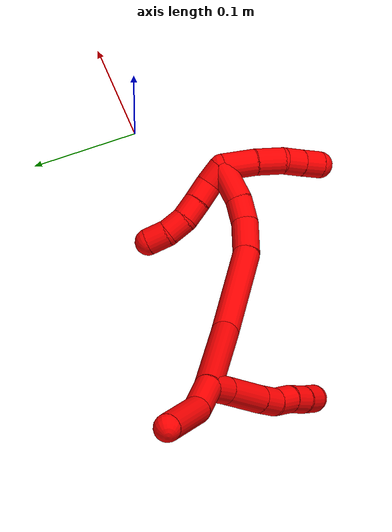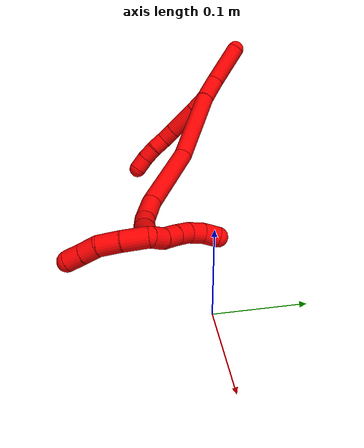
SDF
<sdf version="1.7">
 <world name="default">
  <model name="2">
   <static>0</static>
   <link name="2">
    <collision name="collision-cylinder-e_1_2_8">
     <pose>0.001656 -0.010536 -0.005905 2.08162 0.136253 0.231869</pose>
     <geometry><cylinder><radius>0.0125</radius><length>0.024382</length></cylinder></geometry>
     <surface>
      <friction><ode><mu>1.16</mu><mu2>1.16</mu2><slip1>0</slip1><slip2>0</slip2></ode></friction>
      <contact><ode><kp>1e+06</kp><kd>1</kd><max_vel>0</max_vel><min_depth>0.001</min_depth></ode></contact>
     </surface>
    </collision>
    <visual name="visual-cylinder-e_1_2_8">
     <pose>0.001656 -0.010536 -0.005905 2.08162 0.136253 0.231869</pose>
     <geometry><cylinder><radius>0.0125</radius><length>0.024382</length></cylinder></geometry>
     <material><ambient>1 0 0 1</ambient></material>
    </visual>
    <collision name="collision-cylinder-e_2_8_9">
     <pose>0.006624 -0.041015 -0.021019 2.0034 0.149649 0.233312</pose>
     <geometry><cylinder><radius>0.0125</radius><length>0.044429</length></cylinder></geometry>
     <surface>
      <friction><ode><mu>1.16</mu><mu2>1.16</mu2><slip1>0</slip1><slip2>0</slip2></ode></friction>
      <contact><ode><kp>1e+06</kp><kd>1</kd><max_vel>0</max_vel><min_depth>0.001</min_depth></ode></contact>
     </surface>
    </collision>
    <visual name="visual-cylinder-e_2_8_9">
     <pose>0.006624 -0.041015 -0.021019 2.0034 0.149649 0.233312</pose>
     <geometry><cylinder><radius>0.0125</radius><length>0.044429</length></cylinder></geometry>
     <material><ambient>1 0 0 1</ambient></material>
    </visual>
    <collision name="collision-cylinder-e_3_9_10">
     <pose>0.011765 -0.069975 -0.03479 2.03914 0.17907 0.289998</pose>
     <geometry><cylinder><radius>0.0125</radius><length>0.020541</length></cylinder></geometry>
     <surface>
      <friction><ode><mu>1.16</mu><mu2>1.16</mu2><slip1>0</slip1><slip2>0</slip2></ode></friction>
      <contact><ode><kp>1e+06</kp><kd>1</kd><max_vel>0</max_vel><min_depth>0.001</min_depth></ode></contact>
     </surface>
    </collision>
    <visual name="visual-cylinder-e_3_9_10">
     <pose>0.011765 -0.069975 -0.03479 2.03914 0.17907 0.289998</pose>
     <geometry><cylinder><radius>0.0125</radius><length>0.020541</length></cylinder></geometry>
     <material><ambient>1 0 0 1</ambient></material>
    </visual>
    <collision name="collision-cylinder-e_4_10_11">
     <pose>0.016655 -0.086394 -0.045673 2.27767 0.30469 0.642986</pose>
     <geometry><cylinder><radius>0.0125</radius><length>0.020405</length></cylinder></geometry>
     <surface>
      <friction><ode><mu>1.16</mu><mu2>1.16</mu2><slip1>0</slip1><slip2>0</slip2></ode></friction>
      <contact><ode><kp>1e+06</kp><kd>1</kd><max_vel>0</max_vel><min_depth>0.001</min_depth></ode></contact>
     </surface>
    </collision>
    <visual name="visual-cylinder-e_4_10_11">
     <pose>0.016655 -0.086394 -0.045673 2.27767 0.30469 0.642986</pose>
     <geometry><cylinder><radius>0.0125</radius><length>0.020405</length></cylinder></geometry>
     <material><ambient>1 0 0 1</ambient></material>
    </visual>
    <collision name="collision-cylinder-e_5_11_12">
     <pose>0.021351 -0.101961 -0.057605 2.17284 0.163513 0.308964</pose>
     <geometry><cylinder><radius>0.0125</radius><length>0.020086</length></cylinder></geometry>
     <surface>
      <friction><ode><mu>1.16</mu><mu2>1.16</mu2><slip1>0</slip1><slip2>0</slip2></ode></friction>
      <contact><ode><kp>1e+06</kp><kd>1</kd><max_vel>0</max_vel><min_depth>0.001</min_depth></ode></contact>
     </surface>
    </collision>
    <visual name="visual-cylinder-e_5_11_12">
     <pose>0.021351 -0.101961 -0.057605 2.17284 0.163513 0.308964</pose>
     <geometry><cylinder><radius>0.0125</radius><length>0.020086</length></cylinder></geometry>
     <material><ambient>1 0 0 1</ambient></material>
    </visual>
    <collision name="collision-cylinder-e_6_12_6">
     <pose>0.023873 -0.117551 -0.069977 2.3095 0.088183 0.199053</pose>
     <geometry><cylinder><radius>0.0125</radius><length>0.020158</length></cylinder></geometry>
     <surface>
      <friction><ode><mu>1.16</mu><mu2>1.16</mu2><slip1>0</slip1><slip2>0</slip2></ode></friction>
      <contact><ode><kp>1e+06</kp><kd>1</kd><max_vel>0</max_vel><min_depth>0.001</min_depth></ode></contact>
     </surface>
    </collision>
    <visual name="visual-cylinder-e_6_12_6">
     <pose>0.023873 -0.117551 -0.069977 2.3095 0.088183 0.199053</pose>
     <geometry><cylinder><radius>0.0125</radius><length>0.020158</length></cylinder></geometry>
     <material><ambient>1 0 0 1</ambient></material>
    </visual>
    <collision name="collision-cylinder-e_1_2_13">
     <pose>-0.003315 0.005353 0.017767 -0.292651 -0.176776 0.02612</pose>
     <geometry><cylinder><radius>0.0125</radius><length>0.037699</length></cylinder></geometry>
     <surface>
      <friction><ode><mu>1.16</mu><mu2>1.16</mu2><slip1>0</slip1><slip2>0</slip2></ode></friction>
      <contact><ode><kp>1e+06</kp><kd>1</kd><max_vel>0</max_vel><min_depth>0.001</min_depth></ode></contact>
     </surface>
    </collision>
    <visual name="visual-cylinder-e_1_2_13">
     <pose>-0.003315 0.005353 0.017767 -0.292651 -0.176776 0.02612</pose>
     <geometry><cylinder><radius>0.0125</radius><length>0.037699</length></cylinder></geometry>
     <material><ambient>1 0 0 1</ambient></material>
    </visual>
    <collision name="collision-cylinder-e_2_13_5">
     <pose>-0.009968 0.028404 0.06095 -0.608252 -0.107379 0.033732</pose>
     <geometry><cylinder><radius>0.0125</radius><length>0.062301</length></cylinder></geometry>
     <surface>
      <friction><ode><mu>1.16</mu><mu2>1.16</mu2><slip1>0</slip1><slip2>0</slip2></ode></friction>
      <contact><ode><kp>1e+06</kp><kd>1</kd><max_vel>0</max_vel><min_depth>0.001</min_depth></ode></contact>
     </surface>
    </collision>
    <visual name="visual-cylinder-e_2_13_5">
     <pose>-0.009968 0.028404 0.06095 -0.608252 -0.107379 0.033732</pose>
     <geometry><cylinder><radius>0.0125</radius><length>0.062301</length></cylinder></geometry>
     <material><ambient>1 0 0 1</ambient></material>
    </visual>
    <collision name="collision-cylinder-e_1_2_14">
     <pose>0.002264 -0.014178 -0.050123 2.86593 0.043429 0.310622</pose>
     <geometry><cylinder><radius>0.0125</radius><length>0.104277</length></cylinder></geometry>
     <surface>
      <friction><ode><mu>1.16</mu><mu2>1.16</mu2><slip1>0</slip1><slip2>0</slip2></ode></friction>
      <contact><ode><kp>1e+06</kp><kd>1</kd><max_vel>0</max_vel><min_depth>0.001</min_depth></ode></contact>
     </surface>
    </collision>
    <visual name="visual-cylinder-e_1_2_14">
     <pose>0.002264 -0.014178 -0.050123 2.86593 0.043429 0.310622</pose>
     <geometry><cylinder><radius>0.0125</radius><length>0.104277</length></cylinder></geometry>
     <material><ambient>1 0 0 1</ambient></material>
    </visual>
    <collision name="collision-cylinder-e_2_14_15">
     <pose>0.019382 -0.0313 -0.148574 3.08074 0.29769 2.74109</pose>
     <geometry><cylinder><radius>0.0125</radius><length>0.101292</length></cylinder></geometry>
     <surface>
      <friction><ode><mu>1.16</mu><mu2>1.16</mu2><slip1>0</slip1><slip2>0</slip2></ode></friction>
      <contact><ode><kp>1e+06</kp><kd>1</kd><max_vel>0</max_vel><min_depth>0.001</min_depth></ode></contact>
     </surface>
    </collision>
    <visual name="visual-cylinder-e_2_14_15">
     <pose>0.019382 -0.0313 -0.148574 3.08074 0.29769 2.74109</pose>
     <geometry><cylinder><radius>0.0125</radius><length>0.101292</length></cylinder></geometry>
     <material><ambient>1 0 0 1</ambient></material>
    </visual>
    <collision name="collision-cylinder-e_3_15_16">
     <pose>0.037902 -0.030808 -0.213832 -2.9413 0.209052 -1.61387</pose>
     <geometry><cylinder><radius>0.0125</radius><length>0.035317</length></cylinder></geometry>
     <surface>
      <friction><ode><mu>1.16</mu><mu2>1.16</mu2><slip1>0</slip1><slip2>0</slip2></ode></friction>
      <contact><ode><kp>1e+06</kp><kd>1</kd><max_vel>0</max_vel><min_depth>0.001</min_depth></ode></contact>
     </surface>
    </collision>
    <visual name="visual-cylinder-e_3_15_16">
     <pose>0.037902 -0.030808 -0.213832 -2.9413 0.209052 -1.61387</pose>
     <geometry><cylinder><radius>0.0125</radius><length>0.035317</length></cylinder></geometry>
     <material><ambient>1 0 0 1</ambient></material>
    </visual>
    <collision name="collision-cylinder-e_4_16_17">
     <pose>0.043785 -0.021513 -0.241056 -2.62428 0.185119 -0.674832</pose>
     <geometry><cylinder><radius>0.0125</radius><length>0.024102</length></cylinder></geometry>
     <surface>
      <friction><ode><mu>1.16</mu><mu2>1.16</mu2><slip1>0</slip1><slip2>0</slip2></ode></friction>
      <contact><ode><kp>1e+06</kp><kd>1</kd><max_vel>0</max_vel><min_depth>0.001</min_depth></ode></contact>
     </surface>
    </collision>
    <visual name="visual-cylinder-e_4_16_17">
     <pose>0.043785 -0.021513 -0.241056 -2.62428 0.185119 -0.674832</pose>
     <geometry><cylinder><radius>0.0125</radius><length>0.024102</length></cylinder></geometry>
     <material><ambient>1 0 0 1</ambient></material>
    </visual>
    <collision name="collision-cylinder-e_5_17_1">
     <pose>0.047222 -0.003456 -0.263846 -2.36817 0.069666 -0.170734</pose>
     <geometry><cylinder><radius>0.0125</radius><length>0.035012</length></cylinder></geometry>
     <surface>
      <friction><ode><mu>1.16</mu><mu2>1.16</mu2><slip1>0</slip1><slip2>0</slip2></ode></friction>
      <contact><ode><kp>1e+06</kp><kd>1</kd><max_vel>0</max_vel><min_depth>0.001</min_depth></ode></contact>
     </surface>
    </collision>
    <visual name="visual-cylinder-e_5_17_1">
     <pose>0.047222 -0.003456 -0.263846 -2.36817 0.069666 -0.170734</pose>
     <geometry><cylinder><radius>0.0125</radius><length>0.035012</length></cylinder></geometry>
     <material><ambient>1 0 0 1</ambient></material>
    </visual>
    <collision name="collision-cylinder-e_1_1_18">
     <pose>0.039256 0.007715 -0.272524 0.263376 -1.16421 -0.173918</pose>
     <geometry><cylinder><radius>0.0125</radius><length>0.02</length></cylinder></geometry>
     <surface>
      <friction><ode><mu>1.16</mu><mu2>1.16</mu2><slip1>0</slip1><slip2>0</slip2></ode></friction>
      <contact><ode><kp>1e+06</kp><kd>1</kd><max_vel>0</max_vel><min_depth>0.001</min_depth></ode></contact>
     </surface>
    </collision>
    <visual name="visual-cylinder-e_1_1_18">
     <pose>0.039256 0.007715 -0.272524 0.263376 -1.16421 -0.173918</pose>
     <geometry><cylinder><radius>0.0125</radius><length>0.02</length></cylinder></geometry>
     <material><ambient>1 0 0 1</ambient></material>
    </visual>
    <collision name="collision-cylinder-e_2_18_19">
     <pose>0.022334 0.006492 -0.262372 0.030421 -0.884586 -0.014408</pose>
     <geometry><cylinder><radius>0.0125</radius><length>0.02</length></cylinder></geometry>
     <surface>
      <friction><ode><mu>1.16</mu><mu2>1.16</mu2><slip1>0</slip1><slip2>0</slip2></ode></friction>
      <contact><ode><kp>1e+06</kp><kd>1</kd><max_vel>0</max_vel><min_depth>0.001</min_depth></ode></contact>
     </surface>
    </collision>
    <visual name="visual-cylinder-e_2_18_19">
     <pose>0.022334 0.006492 -0.262372 0.030421 -0.884586 -0.014408</pose>
     <geometry><cylinder><radius>0.0125</radius><length>0.02</length></cylinder></geometry>
     <material><ambient>1 0 0 1</ambient></material>
    </visual>
    <collision name="collision-cylinder-e_3_19_20">
     <pose>0.006485 0.006198 -0.250193 0.01728 -0.946285 -0.008846</pose>
     <geometry><cylinder><radius>0.0125</radius><length>0.02</length></cylinder></geometry>
     <surface>
      <friction><ode><mu>1.16</mu><mu2>1.16</mu2><slip1>0</slip1><slip2>0</slip2></ode></friction>
      <contact><ode><kp>1e+06</kp><kd>1</kd><max_vel>0</max_vel><min_depth>0.001</min_depth></ode></contact>
     </surface>
    </collision>
    <visual name="visual-cylinder-e_3_19_20">
     <pose>0.006485 0.006198 -0.250193 0.01728 -0.946285 -0.008846</pose>
     <geometry><cylinder><radius>0.0125</radius><length>0.02</length></cylinder></geometry>
     <material><ambient>1 0 0 1</ambient></material>
    </visual>
    <collision name="collision-cylinder-e_4_20_21">
     <pose>-0.010839 0.007639 -0.240774 -0.407218 -1.17112 0.272148</pose>
     <geometry><cylinder><radius>0.0125</radius><length>0.02</length></cylinder></geometry>
     <surface>
      <friction><ode><mu>1.16</mu><mu2>1.16</mu2><slip1>0</slip1><slip2>0</slip2></ode></friction>
      <contact><ode><kp>1e+06</kp><kd>1</kd><max_vel>0</max_vel><min_depth>0.001</min_depth></ode></contact>
     </surface>
    </collision>
    <visual name="visual-cylinder-e_4_20_21">
     <pose>-0.010839 0.007639 -0.240774 -0.407218 -1.17112 0.272148</pose>
     <geometry><cylinder><radius>0.0125</radius><length>0.02</length></cylinder></geometry>
     <material><ambient>1 0 0 1</ambient></material>
    </visual>
    <collision name="collision-cylinder-e_5_21_4">
     <pose>-0.029656 0.011866 -0.236482 -1.30951 -1.28899 1.04666</pose>
     <geometry><cylinder><radius>0.0125</radius><length>0.02</length></cylinder></geometry>
     <surface>
      <friction><ode><mu>1.16</mu><mu2>1.16</mu2><slip1>0</slip1><slip2>0</slip2></ode></friction>
      <contact><ode><kp>1e+06</kp><kd>1</kd><max_vel>0</max_vel><min_depth>0.001</min_depth></ode></contact>
     </surface>
    </collision>
    <visual name="visual-cylinder-e_5_21_4">
     <pose>-0.029656 0.011866 -0.236482 -1.30951 -1.28899 1.04666</pose>
     <geometry><cylinder><radius>0.0125</radius><length>0.02</length></cylinder></geometry>
     <material><ambient>1 0 0 1</ambient></material>
    </visual>
    <collision name="collision-cylinder-e_1_1_22">
     <pose>0.060043 -0.001816 -0.280187 1.91998 0.801319 1.08817</pose>
     <geometry><cylinder><radius>0.0125</radius><length>0.032306</length></cylinder></geometry>
     <surface>
      <friction><ode><mu>1.16</mu><mu2>1.16</mu2><slip1>0</slip1><slip2>0</slip2></ode></friction>
      <contact><ode><kp>1e+06</kp><kd>1</kd><max_vel>0</max_vel><min_depth>0.001</min_depth></ode></contact>
     </surface>
    </collision>
    <visual name="visual-cylinder-e_1_1_22">
     <pose>0.060043 -0.001816 -0.280187 1.91998 0.801319 1.08817</pose>
     <geometry><cylinder><radius>0.0125</radius><length>0.032306</length></cylinder></geometry>
     <material><ambient>1 0 0 1</ambient></material>
    </visual>
    <collision name="collision-cylinder-e_2_22_23">
     <pose>0.080465 -0.022245 -0.286987 1.86173 0.708079 0.921683</pose>
     <geometry><cylinder><radius>0.0125</radius><length>0.027123</length></cylinder></geometry>
     <surface>
      <friction><ode><mu>1.16</mu><mu2>1.16</mu2><slip1>0</slip1><slip2>0</slip2></ode></friction>
      <contact><ode><kp>1e+06</kp><kd>1</kd><max_vel>0</max_vel><min_depth>0.001</min_depth></ode></contact>
     </surface>
    </collision>
    <visual name="visual-cylinder-e_2_22_23">
     <pose>0.080465 -0.022245 -0.286987 1.86173 0.708079 0.921683</pose>
     <geometry><cylinder><radius>0.0125</radius><length>0.027123</length></cylinder></geometry>
     <material><ambient>1 0 0 1</ambient></material>
    </visual>
    <collision name="collision-cylinder-e_3_23_24">
     <pose>0.093391 -0.040673 -0.293153 1.92972 0.422151 0.599822</pose>
     <geometry><cylinder><radius>0.0125</radius><length>0.020044</length></cylinder></geometry>
     <surface>
      <friction><ode><mu>1.16</mu><mu2>1.16</mu2><slip1>0</slip1><slip2>0</slip2></ode></friction>
      <contact><ode><kp>1e+06</kp><kd>1</kd><max_vel>0</max_vel><min_depth>0.001</min_depth></ode></contact>
     </surface>
    </collision>
    <visual name="visual-cylinder-e_3_23_24">
     <pose>0.093391 -0.040673 -0.293153 1.92972 0.422151 0.599822</pose>
     <geometry><cylinder><radius>0.0125</radius><length>0.020044</length></cylinder></geometry>
     <material><ambient>1 0 0 1</ambient></material>
    </visual>
    <collision name="collision-cylinder-e_4_24_3">
     <pose>0.101911 -0.057896 -0.299654 1.93367 0.444459 0.632976</pose>
     <geometry><cylinder><radius>0.0125</radius><length>0.020527</length></cylinder></geometry>
     <surface>
      <friction><ode><mu>1.16</mu><mu2>1.16</mu2><slip1>0</slip1><slip2>0</slip2></ode></friction>
      <contact><ode><kp>1e+06</kp><kd>1</kd><max_vel>0</max_vel><min_depth>0.001</min_depth></ode></contact>
     </surface>
    </collision>
    <visual name="visual-cylinder-e_4_24_3">
     <pose>0.101911 -0.057896 -0.299654 1.93367 0.444459 0.632976</pose>
     <geometry><cylinder><radius>0.0125</radius><length>0.020527</length></cylinder></geometry>
     <material><ambient>1 0 0 1</ambient></material>
    </visual>
    <collision name="collision-sphere-3">
     <pose>0.106324 -0.066559 -0.302943 0 -0 0</pose>
     <geometry><sphere><radius>0.0125</radius></sphere></geometry>
     <surface>
      <friction><ode><mu>1.16</mu><mu2>1.16</mu2><slip1>0</slip1><slip2>0</slip2></ode></friction>
      <contact><ode><kp>1e+06</kp><kd>1</kd><max_vel>0</max_vel><min_depth>0.001</min_depth></ode></contact>
     </surface>
    </collision>
    <visual name="visual-sphere-3">
     <pose>0.106324 -0.066559 -0.302943 0 -0 0</pose>
     <geometry><sphere><radius>0.0125</radius></sphere></geometry>
     <material><ambient>1 0 0 1</ambient></material>
    </visual>
    <collision name="collision-sphere-24">
     <pose>0.097498 -0.049233 -0.296365 0 -0 0</pose>
     <geometry><sphere><radius>0.0125</radius></sphere></geometry>
     <surface>
      <friction><ode><mu>1.16</mu><mu2>1.16</mu2><slip1>0</slip1><slip2>0</slip2></ode></friction>
      <contact><ode><kp>1e+06</kp><kd>1</kd><max_vel>0</max_vel><min_depth>0.001</min_depth></ode></contact>
     </surface>
    </collision>
    <visual name="visual-sphere-24">
     <pose>0.097498 -0.049233 -0.296365 0 -0 0</pose>
     <geometry><sphere><radius>0.0125</radius></sphere></geometry>
     <material><ambient>1 0 0 1</ambient></material>
    </visual>
    <collision name="collision-sphere-23">
     <pose>0.089285 -0.032114 -0.289942 0 -0 0</pose>
     <geometry><sphere><radius>0.0125</radius></sphere></geometry>
     <surface>
      <friction><ode><mu>1.16</mu><mu2>1.16</mu2><slip1>0</slip1><slip2>0</slip2></ode></friction>
      <contact><ode><kp>1e+06</kp><kd>1</kd><max_vel>0</max_vel><min_depth>0.001</min_depth></ode></contact>
     </surface>
    </collision>
    <visual name="visual-sphere-23">
     <pose>0.089285 -0.032114 -0.289942 0 -0 0</pose>
     <geometry><sphere><radius>0.0125</radius></sphere></geometry>
     <material><ambient>1 0 0 1</ambient></material>
    </visual>
    <collision name="collision-sphere-22">
     <pose>0.071645 -0.012377 -0.284032 0 -0 0</pose>
     <geometry><sphere><radius>0.0125</radius></sphere></geometry>
     <surface>
      <friction><ode><mu>1.16</mu><mu2>1.16</mu2><slip1>0</slip1><slip2>0</slip2></ode></friction>
      <contact><ode><kp>1e+06</kp><kd>1</kd><max_vel>0</max_vel><min_depth>0.001</min_depth></ode></contact>
     </surface>
    </collision>
    <visual name="visual-sphere-22">
     <pose>0.071645 -0.012377 -0.284032 0 -0 0</pose>
     <geometry><sphere><radius>0.0125</radius></sphere></geometry>
     <material><ambient>1 0 0 1</ambient></material>
    </visual>
    <collision name="collision-sphere-4">
     <pose>-0.039262 0.014553 -0.235764 0 -0 0</pose>
     <geometry><sphere><radius>0.0125</radius></sphere></geometry>
     <surface>
      <friction><ode><mu>1.16</mu><mu2>1.16</mu2><slip1>0</slip1><slip2>0</slip2></ode></friction>
      <contact><ode><kp>1e+06</kp><kd>1</kd><max_vel>0</max_vel><min_depth>0.001</min_depth></ode></contact>
     </surface>
    </collision>
    <visual name="visual-sphere-4">
     <pose>-0.039262 0.014553 -0.235764 0 -0 0</pose>
     <geometry><sphere><radius>0.0125</radius></sphere></geometry>
     <material><ambient>1 0 0 1</ambient></material>
    </visual>
    <collision name="collision-sphere-21">
     <pose>-0.020051 0.00918 -0.237201 0 -0 0</pose>
     <geometry><sphere><radius>0.0125</radius></sphere></geometry>
     <surface>
      <friction><ode><mu>1.16</mu><mu2>1.16</mu2><slip1>0</slip1><slip2>0</slip2></ode></friction>
      <contact><ode><kp>1e+06</kp><kd>1</kd><max_vel>0</max_vel><min_depth>0.001</min_depth></ode></contact>
     </surface>
    </collision>
    <visual name="visual-sphere-21">
     <pose>-0.020051 0.00918 -0.237201 0 -0 0</pose>
     <geometry><sphere><radius>0.0125</radius></sphere></geometry>
     <material><ambient>1 0 0 1</ambient></material>
    </visual>
    <collision name="collision-sphere-20">
     <pose>-0.001627 0.006097 -0.244347 0 -0 0</pose>
     <geometry><sphere><radius>0.0125</radius></sphere></geometry>
     <surface>
      <friction><ode><mu>1.16</mu><mu2>1.16</mu2><slip1>0</slip1><slip2>0</slip2></ode></friction>
      <contact><ode><kp>1e+06</kp><kd>1</kd><max_vel>0</max_vel><min_depth>0.001</min_depth></ode></contact>
     </surface>
    </collision>
    <visual name="visual-sphere-20">
     <pose>-0.001627 0.006097 -0.244347 0 -0 0</pose>
     <geometry><sphere><radius>0.0125</radius></sphere></geometry>
     <material><ambient>1 0 0 1</ambient></material>
    </visual>
    <collision name="collision-sphere-12">
     <pose>0.022985 -0.110128 -0.063217 0 -0 0</pose>
     <geometry><sphere><radius>0.0125</radius></sphere></geometry>
     <surface>
      <friction><ode><mu>1.16</mu><mu2>1.16</mu2><slip1>0</slip1><slip2>0</slip2></ode></friction>
      <contact><ode><kp>1e+06</kp><kd>1</kd><max_vel>0</max_vel><min_depth>0.001</min_depth></ode></contact>
     </surface>
    </collision>
    <visual name="visual-sphere-12">
     <pose>0.022985 -0.110128 -0.063217 0 -0 0</pose>
     <geometry><sphere><radius>0.0125</radius></sphere></geometry>
     <material><ambient>1 0 0 1</ambient></material>
    </visual>
    <collision name="collision-sphere-11">
     <pose>0.019716 -0.093794 -0.051993 0 -0 0</pose>
     <geometry><sphere><radius>0.0125</radius></sphere></geometry>
     <surface>
      <friction><ode><mu>1.16</mu><mu2>1.16</mu2><slip1>0</slip1><slip2>0</slip2></ode></friction>
      <contact><ode><kp>1e+06</kp><kd>1</kd><max_vel>0</max_vel><min_depth>0.001</min_depth></ode></contact>
     </surface>
    </collision>
    <visual name="visual-sphere-11">
     <pose>0.019716 -0.093794 -0.051993 0 -0 0</pose>
     <geometry><sphere><radius>0.0125</radius></sphere></geometry>
     <material><ambient>1 0 0 1</ambient></material>
    </visual>
    <collision name="collision-sphere-10">
     <pose>0.013594 -0.078993 -0.039352 0 -0 0</pose>
     <geometry><sphere><radius>0.0125</radius></sphere></geometry>
     <surface>
      <friction><ode><mu>1.16</mu><mu2>1.16</mu2><slip1>0</slip1><slip2>0</slip2></ode></friction>
      <contact><ode><kp>1e+06</kp><kd>1</kd><max_vel>0</max_vel><min_depth>0.001</min_depth></ode></contact>
     </surface>
    </collision>
    <visual name="visual-sphere-10">
     <pose>0.013594 -0.078993 -0.039352 0 -0 0</pose>
     <geometry><sphere><radius>0.0125</radius></sphere></geometry>
     <material><ambient>1 0 0 1</ambient></material>
    </visual>
    <collision name="collision-sphere-9">
     <pose>0.009936 -0.060957 -0.030228 0 -0 0</pose>
     <geometry><sphere><radius>0.0125</radius></sphere></geometry>
     <surface>
      <friction><ode><mu>1.16</mu><mu2>1.16</mu2><slip1>0</slip1><slip2>0</slip2></ode></friction>
      <contact><ode><kp>1e+06</kp><kd>1</kd><max_vel>0</max_vel><min_depth>0.001</min_depth></ode></contact>
     </surface>
    </collision>
    <visual name="visual-sphere-9">
     <pose>0.009936 -0.060957 -0.030228 0 -0 0</pose>
     <geometry><sphere><radius>0.0125</radius></sphere></geometry>
     <material><ambient>1 0 0 1</ambient></material>
    </visual>
    <collision name="collision-sphere-2">
     <geometry><sphere><radius>0.0125</radius></sphere></geometry>
     <surface>
      <friction><ode><mu>1.16</mu><mu2>1.16</mu2><slip1>0</slip1><slip2>0</slip2></ode></friction>
      <contact><ode><kp>1e+06</kp><kd>1</kd><max_vel>0</max_vel><min_depth>0.001</min_depth></ode></contact>
     </surface>
    </collision>
    <visual name="visual-sphere-2">
     <geometry><sphere><radius>0.0125</radius></sphere></geometry>
     <material><ambient>1 0 0 1</ambient></material>
    </visual>
    <collision name="collision-sphere-19">
     <pose>0.014598 0.0063 -0.256039 0 -0 0</pose>
     <geometry><sphere><radius>0.0125</radius></sphere></geometry>
     <surface>
      <friction><ode><mu>1.16</mu><mu2>1.16</mu2><slip1>0</slip1><slip2>0</slip2></ode></friction>
      <contact><ode><kp>1e+06</kp><kd>1</kd><max_vel>0</max_vel><min_depth>0.001</min_depth></ode></contact>
     </surface>
    </collision>
    <visual name="visual-sphere-19">
     <pose>0.014598 0.0063 -0.256039 0 -0 0</pose>
     <geometry><sphere><radius>0.0125</radius></sphere></geometry>
     <material><ambient>1 0 0 1</ambient></material>
    </visual>
    <collision name="collision-sphere-8">
     <pose>0.003312 -0.021072 -0.01181 0 -0 0</pose>
     <geometry><sphere><radius>0.0125</radius></sphere></geometry>
     <surface>
      <friction><ode><mu>1.16</mu><mu2>1.16</mu2><slip1>0</slip1><slip2>0</slip2></ode></friction>
      <contact><ode><kp>1e+06</kp><kd>1</kd><max_vel>0</max_vel><min_depth>0.001</min_depth></ode></contact>
     </surface>
    </collision>
    <visual name="visual-sphere-8">
     <pose>0.003312 -0.021072 -0.01181 0 -0 0</pose>
     <geometry><sphere><radius>0.0125</radius></sphere></geometry>
     <material><ambient>1 0 0 1</ambient></material>
    </visual>
    <collision name="collision-sphere-6">
     <pose>0.024761 -0.124973 -0.076737 0 -0 0</pose>
     <geometry><sphere><radius>0.0125</radius></sphere></geometry>
     <surface>
      <friction><ode><mu>1.16</mu><mu2>1.16</mu2><slip1>0</slip1><slip2>0</slip2></ode></friction>
      <contact><ode><kp>1e+06</kp><kd>1</kd><max_vel>0</max_vel><min_depth>0.001</min_depth></ode></contact>
     </surface>
    </collision>
    <visual name="visual-sphere-6">
     <pose>0.024761 -0.124973 -0.076737 0 -0 0</pose>
     <geometry><sphere><radius>0.0125</radius></sphere></geometry>
     <material><ambient>1 0 0 1</ambient></material>
    </visual>
    <collision name="collision-sphere-13">
     <pose>-0.00663 0.010706 0.035533 0 -0 0</pose>
     <geometry><sphere><radius>0.0125</radius></sphere></geometry>
     <surface>
      <friction><ode><mu>1.16</mu><mu2>1.16</mu2><slip1>0</slip1><slip2>0</slip2></ode></friction>
      <contact><ode><kp>1e+06</kp><kd>1</kd><max_vel>0</max_vel><min_depth>0.001</min_depth></ode></contact>
     </surface>
    </collision>
    <visual name="visual-sphere-13">
     <pose>-0.00663 0.010706 0.035533 0 -0 0</pose>
     <geometry><sphere><radius>0.0125</radius></sphere></geometry>
     <material><ambient>1 0 0 1</ambient></material>
    </visual>
    <collision name="collision-sphere-5">
     <pose>-0.013307 0.046102 0.086366 0 -0 0</pose>
     <geometry><sphere><radius>0.0125</radius></sphere></geometry>
     <surface>
      <friction><ode><mu>1.16</mu><mu2>1.16</mu2><slip1>0</slip1><slip2>0</slip2></ode></friction>
      <contact><ode><kp>1e+06</kp><kd>1</kd><max_vel>0</max_vel><min_depth>0.001</min_depth></ode></contact>
     </surface>
    </collision>
    <visual name="visual-sphere-5">
     <pose>-0.013307 0.046102 0.086366 0 -0 0</pose>
     <geometry><sphere><radius>0.0125</radius></sphere></geometry>
     <material><ambient>1 0 0 1</ambient></material>
    </visual>
    <collision name="collision-sphere-14">
     <pose>0.004527 -0.028356 -0.100246 0 -0 0</pose>
     <geometry><sphere><radius>0.0125</radius></sphere></geometry>
     <surface>
      <friction><ode><mu>1.16</mu><mu2>1.16</mu2><slip1>0</slip1><slip2>0</slip2></ode></friction>
      <contact><ode><kp>1e+06</kp><kd>1</kd><max_vel>0</max_vel><min_depth>0.001</min_depth></ode></contact>
     </surface>
    </collision>
    <visual name="visual-sphere-14">
     <pose>0.004527 -0.028356 -0.100246 0 -0 0</pose>
     <geometry><sphere><radius>0.0125</radius></sphere></geometry>
     <material><ambient>1 0 0 1</ambient></material>
    </visual>
    <collision name="collision-sphere-15">
     <pose>0.034237 -0.034245 -0.196903 0 -0 0</pose>
     <geometry><sphere><radius>0.0125</radius></sphere></geometry>
     <surface>
      <friction><ode><mu>1.16</mu><mu2>1.16</mu2><slip1>0</slip1><slip2>0</slip2></ode></friction>
      <contact><ode><kp>1e+06</kp><kd>1</kd><max_vel>0</max_vel><min_depth>0.001</min_depth></ode></contact>
     </surface>
    </collision>
    <visual name="visual-sphere-15">
     <pose>0.034237 -0.034245 -0.196903 0 -0 0</pose>
     <geometry><sphere><radius>0.0125</radius></sphere></geometry>
     <material><ambient>1 0 0 1</ambient></material>
    </visual>
    <collision name="collision-sphere-16">
     <pose>0.041567 -0.027371 -0.23076 0 -0 0</pose>
     <geometry><sphere><radius>0.0125</radius></sphere></geometry>
     <surface>
      <friction><ode><mu>1.16</mu><mu2>1.16</mu2><slip1>0</slip1><slip2>0</slip2></ode></friction>
      <contact><ode><kp>1e+06</kp><kd>1</kd><max_vel>0</max_vel><min_depth>0.001</min_depth></ode></contact>
     </surface>
    </collision>
    <visual name="visual-sphere-16">
     <pose>0.041567 -0.027371 -0.23076 0 -0 0</pose>
     <geometry><sphere><radius>0.0125</radius></sphere></geometry>
     <material><ambient>1 0 0 1</ambient></material>
    </visual>
    <collision name="collision-sphere-17">
     <pose>0.046003 -0.015655 -0.251351 0 -0 0</pose>
     <geometry><sphere><radius>0.0125</radius></sphere></geometry>
     <surface>
      <friction><ode><mu>1.16</mu><mu2>1.16</mu2><slip1>0</slip1><slip2>0</slip2></ode></friction>
      <contact><ode><kp>1e+06</kp><kd>1</kd><max_vel>0</max_vel><min_depth>0.001</min_depth></ode></contact>
     </surface>
    </collision>
    <visual name="visual-sphere-17">
     <pose>0.046003 -0.015655 -0.251351 0 -0 0</pose>
     <geometry><sphere><radius>0.0125</radius></sphere></geometry>
     <material><ambient>1 0 0 1</ambient></material>
    </visual>
    <collision name="collision-sphere-1">
     <pose>0.04844 0.008744 -0.276342 0 -0 0</pose>
     <geometry><sphere><radius>0.0125</radius></sphere></geometry>
     <surface>
      <friction><ode><mu>1.16</mu><mu2>1.16</mu2><slip1>0</slip1><slip2>0</slip2></ode></friction>
      <contact><ode><kp>1e+06</kp><kd>1</kd><max_vel>0</max_vel><min_depth>0.001</min_depth></ode></contact>
     </surface>
    </collision>
    <visual name="visual-sphere-1">
     <pose>0.04844 0.008744 -0.276342 0 -0 0</pose>
     <geometry><sphere><radius>0.0125</radius></sphere></geometry>
     <material><ambient>1 0 0 1</ambient></material>
    </visual>
    <collision name="collision-sphere-18">
     <pose>0.030071 0.006685 -0.268705 0 -0 0</pose>
     <geometry><sphere><radius>0.0125</radius></sphere></geometry>
     <surface>
      <friction><ode><mu>1.16</mu><mu2>1.16</mu2><slip1>0</slip1><slip2>0</slip2></ode></friction>
      <contact><ode><kp>1e+06</kp><kd>1</kd><max_vel>0</max_vel><min_depth>0.001</min_depth></ode></contact>
     </surface>
    </collision>
    <visual name="visual-sphere-18">
     <pose>0.030071 0.006685 -0.268705 0 -0 0</pose>
     <geometry><sphere><radius>0.0125</radius></sphere></geometry>
     <material><ambient>1 0 0 1</ambient></material>
    </visual>
    <inertial>
     <pose>0.021286 -0.021293 -0.130413 0 -0 0</pose>
     <mass>0.75</mass>
     <inertia>
      <ixx>0.000143</ixx>
      <ixy>0</ixy>
      <ixz>0</ixz>
      <iyy>7.4e-05</iyy>
      <iyz>0</iyz>
      <izz>-1.8e-05</izz>
     </inertia>
    </inertial>
   </link>
   <pose>-0.334741 0.057316 0.116963 1.06496 -0.618033 -1.56138</pose>
  </model>
 </world>
</sdf>
